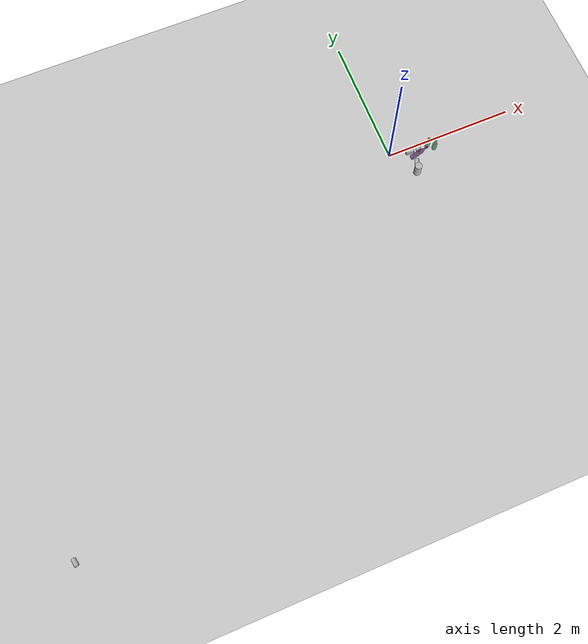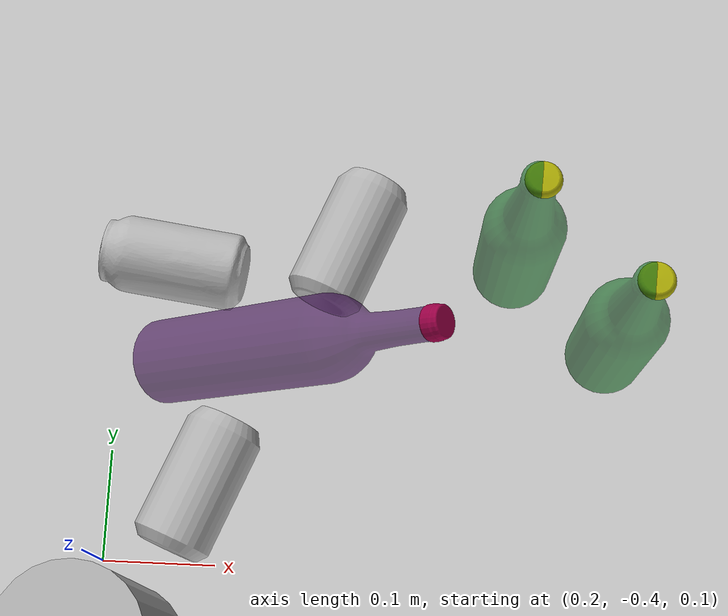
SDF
<sdf version="1.6">
 <world name="default">
  <light name="sun" type="directional">
   <pose>0 0 10 0 -0 0</pose>
   <diffuse>0.8 0.8 0.8 1</diffuse>
   <specular>0.2 0.2 0.2 1</specular>
   <attenuation>
    <range>1000</range>
    <constant>0.9</constant>
    <linear>0.01</linear>
    <quadratic>0.001</quadratic>
   </attenuation>
   <direction>-0.5 0.1 -0.9</direction>
  </light>
  <model name="ground_plane">
   <static>1</static>
   <link name="link">
    <collision name="collision">
     <geometry><plane><normal>0 0 1</normal><size>100 100</size></plane></geometry>
     <surface><friction><ode><mu>100</mu><mu2>50</mu2></ode></friction></surface>
    </collision>
    <visual name="visual">
     <cast_shadows>0</cast_shadows>
     <geometry><plane><normal>0 0 1</normal><size>100 100</size></plane></geometry>
     <material>
      <script><uri>file://media/materials/scripts/gazebo.material</uri><name>Gazebo/Grey</name></script>
     </material>
    </visual>
   </link>
  </model>
  <gravity>0 0 -9.8</gravity>
  <magnetic_field>6e-06 2.3e-05 -4.2e-05</magnetic_field>
  <atmosphere type="adiabatic"/>
  <physics name="default_physics" default="0" type="ode">
   <max_step_size>0.001</max_step_size>
   <real_time_factor>1</real_time_factor>
   <real_time_update_rate>1000</real_time_update_rate>
  </physics>
  <scene><ambient>0.4 0.4 0.4 1</ambient><background>0.7 0.7 0.7 1</background><shadows>1</shadows></scene>
  <spherical_coordinates>
   <surface_model>EARTH_WGS84</surface_model>
   <latitude_deg>0</latitude_deg>
   <longitude_deg>0</longitude_deg>
   <elevation>0</elevation>
   <heading_deg>0</heading_deg>
  </spherical_coordinates>
  <plugin name="sim_pickplace" filename="libsim_pickplace.so"/>
  <model name="bottle_beer">
   <link name="link_2">
    <pose>0.000404 7.5e-05 0 0 -0 0</pose>
    <visual name="visual">
     <geometry><mesh><uri>model://bottle_beer/meshes/beer_bottle.dae</uri><scale>1 1 1</scale></mesh></geometry>
     <material>
      <lighting>1</lighting>
      <ambient>0.035 0.415 0.098 1</ambient>
      <diffuse>0.035 0.415 0.098 1</diffuse>
      <specular>0.01 0.01 0.01 1</specular>
      <emissive>0 0 0 1</emissive>
      <shader type="vertex"><normal_map>__default__</normal_map></shader>
     </material>
     <transparency>0.4</transparency>
    </visual>
    <collision name="collision">
     <geometry><mesh><uri>model://bottle_beer/meshes/beer_bottle.dae</uri><scale>1 1 1</scale></mesh></geometry>
    </collision>
   </link>
   <link name="link_3">
    <pose>-0.000404 -7.5e-05 0 0 -0 0</pose>
    <visual name="visual">
     <geometry><mesh><uri>model://bottle_beer/meshes/cap.dae</uri><scale>1 1 1</scale></mesh></geometry>
     <material>
      <lighting>1</lighting>
      <ambient>0.694 0.686 0.023 1</ambient>
      <diffuse>0.694 0.686 0.023 1</diffuse>
      <specular>0.01 0.01 0.01 1</specular>
      <emissive>0 0 0 1</emissive>
      <shader type="vertex"><normal_map>__default__</normal_map></shader>
     </material>
    </visual>
    <collision name="collision">
     <geometry><mesh><uri>model://bottle_beer/meshes/cap.dae</uri><scale>1 1 1</scale></mesh></geometry>
    </collision>
   </link>
   <static>1</static>
   <pose>0.635871 -0.207301 0.159763 0 -0 0</pose>
  </model>
  <model name="bottle_red_wine">
   <link name="link_22">
    <pose>-0.038814 -0.033806 0.002754 0 -0 0</pose>
    <visual name="visual">
     <geometry><mesh><uri>model://bottle_red_wine/meshes/bottle.dae</uri><scale>1 1 1</scale></mesh></geometry>
     <material>
      <lighting>1</lighting>
      <ambient>0.215 0 0.305 1</ambient>
      <diffuse>0.215 0 0.305 1</diffuse>
      <specular>0.01 0.01 0.01 1</specular>
      <emissive>0 0 0 1</emissive>
      <shader type="vertex"><normal_map>__default__</normal_map></shader>
     </material>
     <transparency>0.4</transparency>
    </visual>
    <collision name="collision">
     <geometry><mesh><uri>model://bottle_red_wine/meshes/bottle.dae</uri><scale>1 1 1</scale></mesh></geometry>
    </collision>
   </link>
   <link name="link_23">
    <pose>-0.038814 -0.033806 0.002754 0 -0 0</pose>
    <inertial>
     <mass>1</mass>
     <inertia>
      <ixx>0.166667</ixx>
      <ixy>0</ixy>
      <ixz>0</ixz>
      <iyy>0.166667</iyy>
      <iyz>0</iyz>
      <izz>0.166667</izz>
     </inertia>
    </inertial>
    <visual name="visual">
     <geometry><mesh><uri>model://bottle_red_wine/meshes/cap.dae</uri><scale>1 1 1</scale></mesh></geometry>
     <material>
      <lighting>1</lighting>
      <ambient>0.623 0 0.282 1</ambient>
      <diffuse>0.623 0 0.282 1</diffuse>
      <specular>0.01 0.01 0.01 1</specular>
      <emissive>0 0 0 1</emissive>
      <shader type="vertex"><normal_map>__default__</normal_map></shader>
     </material>
    </visual>
    <collision name="collision">
     <geometry><mesh><uri>model://bottle_red_wine/meshes/cap.dae</uri><scale>1 1 1</scale></mesh></geometry>
    </collision>
   </link>
   <static>1</static>
   <pose>0.248221 -0.233075 0.163262 0 0.910709 0</pose>
  </model>
  <model name="coca_cola_clone">
   <link name="link">
    <pose>0 0 0.115 0 -0 0</pose>
    <inertial>
     <mass>0.39</mass>
     <inertia><ixx>0.00058</ixx><ixy>0</ixy><ixz>0</ixz><iyy>0.00058</iyy><iyz>0</iyz><izz>0.00019</izz></inertia>
    </inertial>
    <collision name="collision">
     <geometry><cylinder><radius>0.0301625</radius><length>0.12065</length></cylinder></geometry>
    </collision>
    <visual name="bodyMesh">
     <geometry><mesh><uri>model://coca_cola/meshes/coke.dae</uri><scale>1 1 1</scale></mesh></geometry>
    </visual>
   </link>
   <pose>0.36522 -0.227795 0.191848 -1.57073 0.385018 -0.388511</pose>
  </model>
  <model name="coca_cola_clone_clone">
   <link name="link">
    <pose>0 0 0.115 0 -0 0</pose>
    <inertial>
     <mass>0.39</mass>
     <inertia><ixx>0.00058</ixx><ixy>0</ixy><ixz>0</ixz><iyy>0.00058</iyy><iyz>0</iyz><izz>0.00019</izz></inertia>
    </inertial>
    <collision name="collision">
     <geometry><cylinder><radius>0.0301625</radius><length>0.12065</length></cylinder></geometry>
    </collision>
    <visual name="bodyMesh">
     <geometry><mesh><uri>model://coca_cola/meshes/coke.dae</uri><scale>1 1 1</scale></mesh></geometry>
    </visual>
   </link>
   <pose>-6.21429 -3.7061 0.030163 1.57085 0.229567 0.213436</pose>
  </model>
  <model name="beer">
   <link name="link">
    <pose>0 0 0.115 0 -0 0</pose>
    <inertial>
     <mass>0.39</mass>
     <inertia><ixx>0.00058</ixx><ixy>0</ixy><ixz>0</ixz><iyy>0.00058</iyy><iyz>0</iyz><izz>0.00019</izz></inertia>
    </inertial>
    <collision name="collision">
     <geometry><cylinder><radius>0.055</radius><length>0.23</length></cylinder></geometry>
    </collision>
    <visual name="visual">
     <geometry><cylinder><radius>0.055</radius><length>0.23</length></cylinder></geometry>
     <material>
      <script>
       <uri>model://beer/materials/scripts</uri>
       <uri>model://beer/materials/textures</uri>
       <name>Beer/Diffuse</name>
      </script>
     </material>
    </visual>
   </link>
   <pose>0.232044 -0.477522 0.161697 5e-06 1.8e-05 0.003842</pose>
  </model>
  <model name="coca_cola_clone_clone_0">
   <link name="link">
    <pose>0 0 0.115 0 -0 0</pose>
    <inertial>
     <mass>0.39</mass>
     <inertia><ixx>0.00058</ixx><ixy>0</ixy><ixz>0</ixz><iyy>0.00058</iyy><iyz>0</iyz><izz>0.00019</izz></inertia>
    </inertial>
    <collision name="collision">
     <geometry><cylinder><radius>0.0301625</radius><length>0.12065</length></cylinder></geometry>
    </collision>
    <visual name="bodyMesh">
     <geometry><mesh><uri>model://coca_cola/meshes/coke.dae</uri><scale>1 1 1</scale></mesh></geometry>
    </visual>
   </link>
   <pose>0.248543 -0.445742 0.19186 -1.57086 0.385018 -0.38856</pose>
  </model>
  <model name="coke_can_clone">
   <link name="link">
    <inertial>
     <pose>0 0 0.06 0 -0 0</pose>
     <mass>0.39</mass>
     <inertia>
      <ixx>0.00055575</ixx>
      <ixy>0</ixy>
      <ixz>0</ixz>
      <iyy>0.00055575</iyy>
      <iyz>0</iyz>
      <izz>0.0001755</izz>
     </inertia>
    </inertial>
    <collision name="collision">
     <pose>0.003937 0.004724 -0.18 0 -0 0</pose>
     <geometry><mesh><uri>model://coke_can/meshes/coke_can.dae</uri></mesh></geometry>
     <surface>
      <friction><ode><mu>1</mu><mu2>1</mu2></ode></friction>
      <contact><ode><kp>1e+07</kp><kd>1</kd><min_depth>0.001</min_depth><max_vel>0.1</max_vel></ode></contact>
     </surface>
    </collision>
    <visual name="visual">
     <pose>0.003937 0.004724 -0.18 0 -0 0</pose>
     <geometry><mesh><uri>model://coke_can/meshes/coke_can.dae</uri></mesh></geometry>
    </visual>
   </link>
   <pose>0.322712 -0.156352 0.193252 -1.54041 1.18397 1.46315</pose>
  </model>
  <model name="bottle_beer_clone">
   <link name="link_2">
    <pose>0.000404 7.5e-05 0 0 -0 0</pose>
    <visual name="visual">
     <geometry><mesh><uri>model://bottle_beer/meshes/beer_bottle.dae</uri><scale>1 1 1</scale></mesh></geometry>
     <material>
      <lighting>1</lighting>
      <ambient>0.035 0.415 0.098 1</ambient>
      <diffuse>0.035 0.415 0.098 1</diffuse>
      <specular>0.01 0.01 0.01 1</specular>
      <emissive>0 0 0 1</emissive>
      <shader type="vertex"><normal_map>__default__</normal_map></shader>
     </material>
     <transparency>0.4</transparency>
    </visual>
    <collision name="collision">
     <geometry><mesh><uri>model://bottle_beer/meshes/beer_bottle.dae</uri><scale>1 1 1</scale></mesh></geometry>
    </collision>
   </link>
   <link name="link_3">
    <pose>-0.000404 -7.5e-05 0 0 -0 0</pose>
    <visual name="visual">
     <geometry><mesh><uri>model://bottle_beer/meshes/cap.dae</uri><scale>1 1 1</scale></mesh></geometry>
     <material>
      <lighting>1</lighting>
      <ambient>0.694 0.686 0.023 1</ambient>
      <diffuse>0.694 0.686 0.023 1</diffuse>
      <specular>0.01 0.01 0.01 1</specular>
      <emissive>0 0 0 1</emissive>
      <shader type="vertex"><normal_map>__default__</normal_map></shader>
     </material>
    </visual>
    <collision name="collision">
     <geometry><mesh><uri>model://bottle_beer/meshes/cap.dae</uri><scale>1 1 1</scale></mesh></geometry>
    </collision>
   </link>
   <static>1</static>
   <pose>0.552885 -0.134048 0.159763 0 -0 0</pose>
  </model>
 </world>
</sdf>
